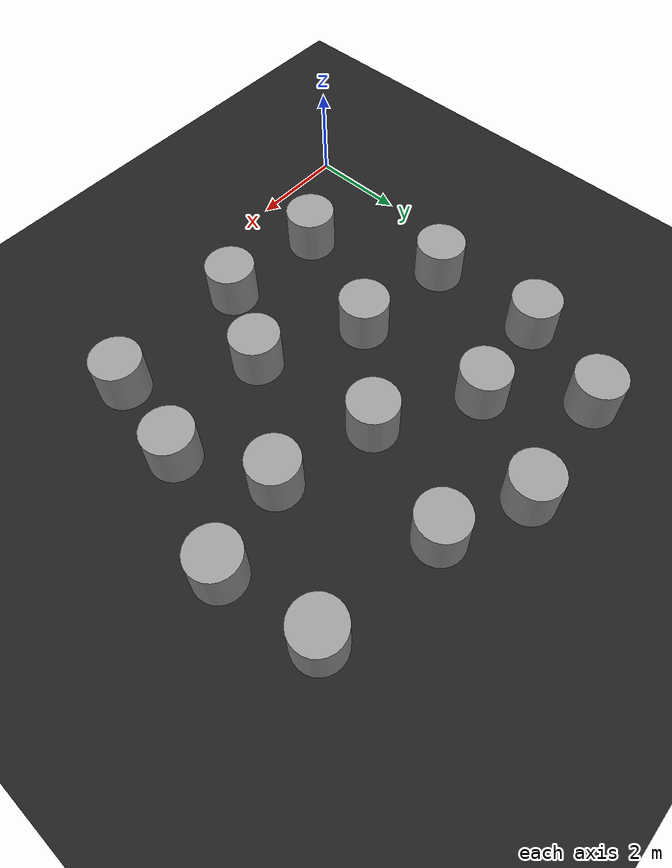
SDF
<sdf version="1.6">
 <world name="default">
  <light name="sun" type="directional">
   <pose>0 0 10 0 -0 0</pose>
   <diffuse>0.8 0.8 0.8 1</diffuse>
   <specular>0.2 0.2 0.2 1</specular>
   <attenuation>
    <range>1000</range>
    <constant>0.9</constant>
    <linear>0.01</linear>
    <quadratic>0.001</quadratic>
   </attenuation>
   <direction>0.5 0.1 -0.9</direction>
  </light>
  <scene><ambient>0.4 0.4 0.4 1</ambient><background>0.7 0.7 0.7 1</background><shadows>1</shadows></scene>
  <physics name="default_physics" default="0" type="ode">
   <max_step_size>0.01</max_step_size>
   <real_time_factor>1</real_time_factor>
   <real_time_update_rate>100</real_time_update_rate>
  </physics>
  <model name="ground_plane_0">
   <static>1</static>
   <link name="link">
    <collision name="collision">
     <geometry><plane><normal>0 0 1</normal><size>100 100</size></plane></geometry>
     <surface><friction><ode><mu>100</mu><mu2>100</mu2></ode></friction></surface>
    </collision>
    <visual name="visual">
     <cast_shadows>0</cast_shadows>
     <geometry><plane><normal>0 0 1</normal><size>100 100</size></plane></geometry>
     <material>
      <script><uri>file://media/materials/scripts/gazebo.material</uri><name>Gazebo/BlackTransparent</name></script>
     </material>
    </visual>
    <velocity_decay><linear>0</linear><angular>0</angular></velocity_decay>
   </link>
  </model>
  <model name="unit_cylinder_1">
   <pose>4.73 5.55 0.49912 -0 -0 -0</pose>
   <link name="link">
    <inertial>
     <mass>1</mass>
     <inertia><ixx>1</ixx><ixy>0</ixy><ixz>0</ixz><iyy>1</iyy><iyz>0</iyz><izz>1</izz></inertia>
    </inertial>
    <collision name="collision">
     <geometry><cylinder><radius>0.5</radius><length>1</length></cylinder></geometry>
    </collision>
    <visual name="visual">
     <geometry><cylinder><radius>0.5</radius><length>1</length></cylinder></geometry>
     <material>
      <script><uri>file://media/materials/scripts/gazebo.material</uri><name>Gazebo/Grey</name></script>
     </material>
    </visual>
    <velocity_decay><linear>0</linear><angular>0</angular></velocity_decay>
   </link>
   <static>0</static>
  </model>
  <gravity>0 0 -9.8</gravity>
  <magnetic_field>6e-06 2.3e-05 -4.2e-05</magnetic_field>
  <atmosphere type="adiabatic"/>
  <audio><device>default</device></audio>
  <spherical_coordinates>
   <surface_model>EARTH_WGS84</surface_model>
   <latitude_deg>0</latitude_deg>
   <longitude_deg>0</longitude_deg>
   <elevation>0</elevation>
   <heading_deg>0</heading_deg>
  </spherical_coordinates>
  <model name="unit_cylinder_1_clone">
   <pose>2.05 1.47 0.49912 -0 -0 -0</pose>
   <link name="link">
    <inertial>
     <mass>1</mass>
     <inertia><ixx>1</ixx><ixy>0</ixy><ixz>0</ixz><iyy>1</iyy><iyz>0</iyz><izz>1</izz></inertia>
    </inertial>
    <collision name="collision">
     <geometry><cylinder><radius>0.5</radius><length>1</length></cylinder></geometry>
    </collision>
    <visual name="visual">
     <geometry><cylinder><radius>0.5</radius><length>1</length></cylinder></geometry>
     <material>
      <script><uri>file://media/materials/scripts/gazebo.material</uri><name>Gazebo/Grey</name></script>
     </material>
    </visual>
    <velocity_decay><linear>0</linear><angular>0</angular></velocity_decay>
   </link>
   <static>0</static>
  </model>
  <model name="unit_cylinder_1_clone_clone">
   <pose>3.09 3.9 0.49912 -0 -0 -0</pose>
   <link name="link">
    <inertial>
     <mass>1</mass>
     <inertia><ixx>1</ixx><ixy>0</ixy><ixz>0</ixz><iyy>1</iyy><iyz>0</iyz><izz>1</izz></inertia>
    </inertial>
    <collision name="collision">
     <geometry><cylinder><radius>0.5</radius><length>1</length></cylinder></geometry>
    </collision>
    <visual name="visual">
     <geometry><cylinder><radius>0.5</radius><length>1</length></cylinder></geometry>
     <material>
      <script><uri>file://media/materials/scripts/gazebo.material</uri><name>Gazebo/Grey</name></script>
     </material>
    </visual>
    <velocity_decay><linear>0</linear><angular>0</angular></velocity_decay>
   </link>
   <static>0</static>
  </model>
  <model name="unit_cylinder_1_clone_clone_0">
   <pose>8.5 5.5 0.49912 -0 -0 -0</pose>
   <link name="link">
    <inertial>
     <mass>1</mass>
     <inertia><ixx>1</ixx><ixy>0</ixy><ixz>0</ixz><iyy>1</iyy><iyz>0</iyz><izz>1</izz></inertia>
    </inertial>
    <collision name="collision">
     <geometry><cylinder><radius>0.5</radius><length>1</length></cylinder></geometry>
    </collision>
    <visual name="visual">
     <geometry><cylinder><radius>0.5</radius><length>1</length></cylinder></geometry>
     <material>
      <script><uri>file://media/materials/scripts/gazebo.material</uri><name>Gazebo/Grey</name></script>
     </material>
    </visual>
    <velocity_decay><linear>0</linear><angular>0</angular></velocity_decay>
   </link>
   <static>0</static>
  </model>
  <model name="unit_cylinder_1_clone_clone_1">
   <pose>2.84343 6.6368 0.49912 -0 -0 -2e-06</pose>
   <link name="link">
    <inertial>
     <mass>1</mass>
     <inertia><ixx>1</ixx><ixy>0</ixy><ixz>0</ixz><iyy>1</iyy><iyz>0</iyz><izz>1</izz></inertia>
    </inertial>
    <collision name="collision">
     <geometry><cylinder><radius>0.5</radius><length>1</length></cylinder></geometry>
    </collision>
    <visual name="visual">
     <geometry><cylinder><radius>0.5</radius><length>1</length></cylinder></geometry>
     <material>
      <script><uri>file://media/materials/scripts/gazebo.material</uri><name>Gazebo/Grey</name></script>
     </material>
    </visual>
    <velocity_decay><linear>0</linear><angular>0</angular></velocity_decay>
   </link>
   <static>0</static>
  </model>
  <model name="unit_cylinder_1_clone_clone_2">
   <pose>7.54136 3.28371 0.49912 -0 -0 -1e-06</pose>
   <link name="link">
    <inertial>
     <mass>1</mass>
     <inertia><ixx>1</ixx><ixy>0</ixy><ixz>0</ixz><iyy>1</iyy><iyz>0</iyz><izz>1</izz></inertia>
    </inertial>
    <collision name="collision">
     <geometry><cylinder><radius>0.5</radius><length>1</length></cylinder></geometry>
    </collision>
    <visual name="visual">
     <geometry><cylinder><radius>0.5</radius><length>1</length></cylinder></geometry>
     <material>
      <script><uri>file://media/materials/scripts/gazebo.material</uri><name>Gazebo/Grey</name></script>
     </material>
    </visual>
    <velocity_decay><linear>0</linear><angular>0</angular></velocity_decay>
   </link>
   <static>0</static>
  </model>
  <model name="unit_cylinder_1_clone_clone_3">
   <pose>8.223 7.478 0.49912 -0 -0 -0</pose>
   <link name="link">
    <inertial>
     <mass>1</mass>
     <inertia><ixx>1</ixx><ixy>0</ixy><ixz>0</ixz><iyy>1</iyy><iyz>0</iyz><izz>1</izz></inertia>
    </inertial>
    <collision name="collision">
     <geometry><cylinder><radius>0.5</radius><length>1</length></cylinder></geometry>
    </collision>
    <visual name="visual">
     <geometry><cylinder><radius>0.5</radius><length>1</length></cylinder></geometry>
     <material>
      <script><uri>file://media/materials/scripts/gazebo.material</uri><name>Gazebo/Grey</name></script>
     </material>
    </visual>
    <velocity_decay><linear>0</linear><angular>0</angular></velocity_decay>
   </link>
   <static>0</static>
  </model>
  <model name="unit_cylinder_1_clone_clone_4">
   <pose>1.62283 8.29539 0.49912 -0 -0 -1e-06</pose>
   <link name="link">
    <inertial>
     <mass>1</mass>
     <inertia><ixx>1</ixx><ixy>0</ixy><ixz>0</ixz><iyy>1</iyy><iyz>0</iyz><izz>1</izz></inertia>
    </inertial>
    <collision name="collision">
     <geometry><cylinder><radius>0.5</radius><length>1</length></cylinder></geometry>
    </collision>
    <visual name="visual">
     <geometry><cylinder><radius>0.5</radius><length>1</length></cylinder></geometry>
     <material>
      <script><uri>file://media/materials/scripts/gazebo.material</uri><name>Gazebo/Grey</name></script>
     </material>
    </visual>
    <velocity_decay><linear>0</linear><angular>0</angular></velocity_decay>
   </link>
   <static>0</static>
  </model>
  <model name="unit_cylinder_1_clone_clone_5">
   <pose>4.22487 1.31506 0.49912 -0 -0 -1e-06</pose>
   <link name="link">
    <inertial>
     <mass>1</mass>
     <inertia><ixx>1</ixx><ixy>0</ixy><ixz>0</ixz><iyy>1</iyy><iyz>0</iyz><izz>1</izz></inertia>
    </inertial>
    <collision name="collision">
     <geometry><cylinder><radius>0.5</radius><length>1</length></cylinder></geometry>
    </collision>
    <visual name="visual">
     <geometry><cylinder><radius>0.5</radius><length>1</length></cylinder></geometry>
     <material>
      <script><uri>file://media/materials/scripts/gazebo.material</uri><name>Gazebo/Grey</name></script>
     </material>
    </visual>
    <velocity_decay><linear>0</linear><angular>0</angular></velocity_decay>
   </link>
   <static>0</static>
  </model>
  <model name="unit_cylinder_1_clone_clone_6">
   <pose>5.10393 2.91924 0.49912 -0 -0 -1e-06</pose>
   <link name="link">
    <inertial>
     <mass>1</mass>
     <inertia><ixx>1</ixx><ixy>0</ixy><ixz>0</ixz><iyy>1</iyy><iyz>0</iyz><izz>1</izz></inertia>
    </inertial>
    <collision name="collision">
     <geometry><cylinder><radius>0.5</radius><length>1</length></cylinder></geometry>
    </collision>
    <visual name="visual">
     <geometry><cylinder><radius>0.5</radius><length>1</length></cylinder></geometry>
     <material>
      <script><uri>file://media/materials/scripts/gazebo.material</uri><name>Gazebo/Grey</name></script>
     </material>
    </visual>
    <velocity_decay><linear>0</linear><angular>0</angular></velocity_decay>
   </link>
   <static>0</static>
  </model>
  <model name="unit_cylinder_1_clone_0">
   <pose>7.17934 1.42281 0.49912 -0 -0 -2e-06</pose>
   <link name="link">
    <inertial>
     <mass>1</mass>
     <inertia><ixx>1</ixx><ixy>0</ixy><ixz>0</ixz><iyy>1</iyy><iyz>0</iyz><izz>1</izz></inertia>
    </inertial>
    <collision name="collision">
     <geometry><cylinder><radius>0.5</radius><length>1</length></cylinder></geometry>
    </collision>
    <visual name="visual">
     <geometry><cylinder><radius>0.5</radius><length>1</length></cylinder></geometry>
     <material>
      <script><uri>file://media/materials/scripts/gazebo.material</uri><name>Gazebo/Grey</name></script>
     </material>
    </visual>
    <velocity_decay><linear>0</linear><angular>0</angular></velocity_decay>
   </link>
   <static>0</static>
  </model>
  <model name="unit_cylinder_1_clone_1">
   <pose>0.921272 4.09126 0.49912 -0 -0 -0</pose>
   <link name="link">
    <inertial>
     <mass>1</mass>
     <inertia><ixx>1</ixx><ixy>0</ixy><ixz>0</ixz><iyy>1</iyy><iyz>0</iyz><izz>1</izz></inertia>
    </inertial>
    <collision name="collision">
     <geometry><cylinder><radius>0.5</radius><length>1</length></cylinder></geometry>
    </collision>
    <visual name="visual">
     <geometry><cylinder><radius>0.5</radius><length>1</length></cylinder></geometry>
     <material>
      <script><uri>file://media/materials/scripts/gazebo.material</uri><name>Gazebo/Grey</name></script>
     </material>
    </visual>
    <velocity_decay><linear>0</linear><angular>0</angular></velocity_decay>
   </link>
   <static>0</static>
  </model>
  <model name="unit_cylinder_1_clone_2">
   <pose>6.7243 5.03995 0.49912 -0 -0 -0</pose>
   <link name="link">
    <inertial>
     <mass>1</mass>
     <inertia><ixx>1</ixx><ixy>0</ixy><ixz>0</ixz><iyy>1</iyy><iyz>0</iyz><izz>1</izz></inertia>
    </inertial>
    <collision name="collision">
     <geometry><cylinder><radius>0.5</radius><length>1</length></cylinder></geometry>
    </collision>
    <visual name="visual">
     <geometry><cylinder><radius>0.5</radius><length>1</length></cylinder></geometry>
     <material>
      <script><uri>file://media/materials/scripts/gazebo.material</uri><name>Gazebo/Grey</name></script>
     </material>
    </visual>
    <velocity_decay><linear>0</linear><angular>0</angular></velocity_decay>
   </link>
   <static>0</static>
  </model>
  <model name="unit_cylinder_1_clone_3">
   <pose>4.00886 8.52864 0.49912 -0 -0 -0</pose>
   <link name="link">
    <inertial>
     <mass>1</mass>
     <inertia><ixx>1</ixx><ixy>0</ixy><ixz>0</ixz><iyy>1</iyy><iyz>0</iyz><izz>1</izz></inertia>
    </inertial>
    <collision name="collision">
     <geometry><cylinder><radius>0.5</radius><length>1</length></cylinder></geometry>
    </collision>
    <visual name="visual">
     <geometry><cylinder><radius>0.5</radius><length>1</length></cylinder></geometry>
     <material>
      <script><uri>file://media/materials/scripts/gazebo.material</uri><name>Gazebo/Grey</name></script>
     </material>
    </visual>
    <velocity_decay><linear>0</linear><angular>0</angular></velocity_decay>
   </link>
   <static>0</static>
  </model>
  <model name="unit_cylinder_1_clone_4">
   <pose>0.876368 6.40862 0.49912 -0 -0 -0</pose>
   <link name="link">
    <inertial>
     <mass>1</mass>
     <inertia><ixx>1</ixx><ixy>0</ixy><ixz>0</ixz><iyy>1</iyy><iyz>0</iyz><izz>1</izz></inertia>
    </inertial>
    <collision name="collision">
     <geometry><cylinder><radius>0.5</radius><length>1</length></cylinder></geometry>
    </collision>
    <visual name="visual">
     <geometry><cylinder><radius>0.5</radius><length>1</length></cylinder></geometry>
     <material>
      <script><uri>file://media/materials/scripts/gazebo.material</uri><name>Gazebo/Grey</name></script>
     </material>
    </visual>
    <velocity_decay><linear>0</linear><angular>0</angular></velocity_decay>
   </link>
   <static>0</static>
  </model>
  <model name="unit_cylinder_1_clone_5">
   <pose>5.61955 7.81035 0.49912 -0 -0 -2e-06</pose>
   <link name="link">
    <inertial>
     <mass>1</mass>
     <inertia><ixx>1</ixx><ixy>0</ixy><ixz>0</ixz><iyy>1</iyy><iyz>0</iyz><izz>1</izz></inertia>
    </inertial>
    <collision name="collision">
     <geometry><cylinder><radius>0.5</radius><length>1</length></cylinder></geometry>
    </collision>
    <visual name="visual">
     <geometry><cylinder><radius>0.5</radius><length>1</length></cylinder></geometry>
     <material>
      <script><uri>file://media/materials/scripts/gazebo.material</uri><name>Gazebo/Grey</name></script>
     </material>
    </visual>
    <velocity_decay><linear>0</linear><angular>0</angular></velocity_decay>
   </link>
   <static>0</static>
  </model>
 </world>
</sdf>
